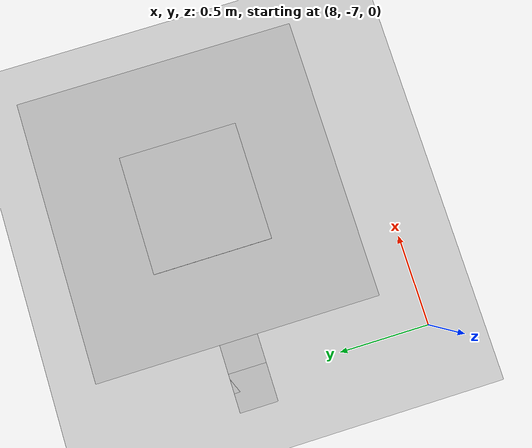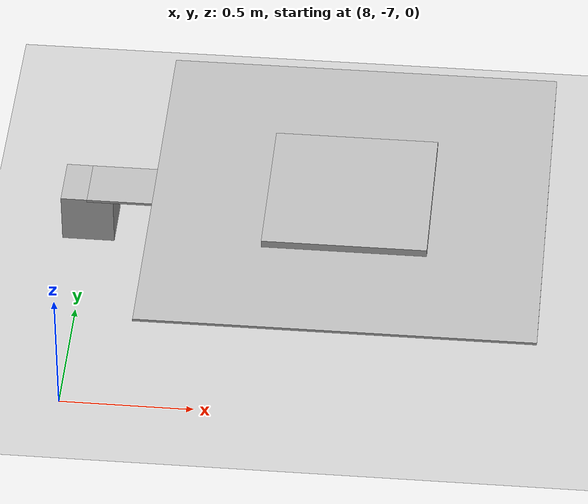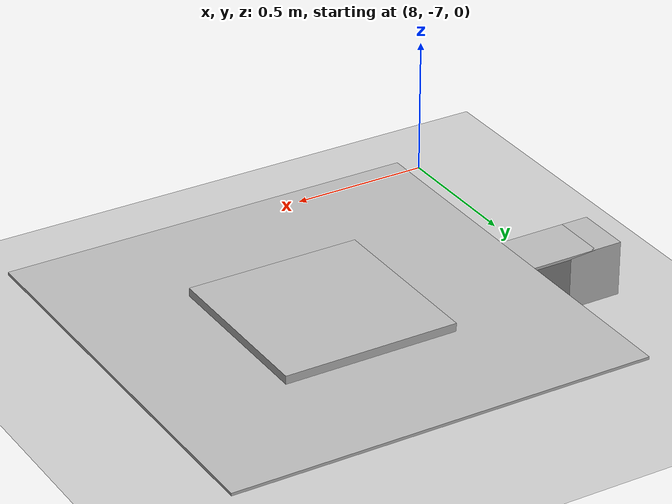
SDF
<sdf version="1.6">
 <world name="default">
  <model name="ground_plane">
   <static>1</static>
   <link name="link">
    <collision name="collision">
     <geometry><plane><normal>0 0 1</normal><size>100 100</size></plane></geometry>
     <surface>
      <contact><collide_bitmask>65535</collide_bitmask></contact>
      <friction><ode><mu>100</mu><mu2>50</mu2></ode></friction>
     </surface>
    </collision>
    <visual name="visual">
     <cast_shadows>0</cast_shadows>
     <geometry><plane><normal>0 0 1</normal><size>100 100</size></plane></geometry>
     <material>
      <script><uri>file://media/materials/scripts/gazebo.material</uri><name>Gazebo/Grey</name></script>
     </material>
    </visual>
   </link>
  </model>
  <model name="helipad_mobile">
   <pose>8 -6 0.1 0 0 0</pose>
   <joint name="helipad_fix0" type="fixed"><parent>world</parent><child>base</child></joint>
   <link name="base">
    <collision name="collision"><geometry><box><size>0.2 0.2 0.2</size></box></geometry></collision>
    <visual name="visual"><geometry><box><size>0.2 0.2 0.2</size></box></geometry></visual>
   </link>
   <joint name="helipad_joint" type="revolute">
    <pose>-0.5 0 0 0 0 0</pose>
    <parent>base</parent>
    <child>arm</child>
    <axis><xyz>0 0 1</xyz></axis>
    <physics><ode><velocity>-0.1</velocity><max_force>1000</max_force></ode></physics>
   </joint>
   <link name="arm">
    <pose>0.5 0 0.095 0 0 0</pose>
    <collision name="collision"><geometry><box><size>1 0.2 0.01</size></box></geometry></collision>
    <visual name="visual"><geometry><box><size>1 0.2 0.01</size></box></geometry></visual>
   </link>
   <joint name="helipad_fix1" type="fixed"><parent>arm</parent><child>helipad_link</child></joint>
   <joint name="helipad_fix5" type="fixed">
    <parent>helipad_link</parent>
    <child>helipad_moving_link</child>
   </joint>
   <link name="helipad_link">
    <pose>1 0 0.1 0 0 0</pose>
    <inertial><mass>10</mass></inertial>
    <collision name="wall_brand_collision">
     <geometry><box><size>1.5 1.5 0.01</size></box></geometry>
     <surface><contact><collide_bitmask>0x02</collide_bitmask></contact></surface>
    </collision>
    <visual name="helipad_visual"><geometry><box><size>1.5 1.5 0.01</size></box></geometry></visual>
   </link>
   <link name="helipad_moving_link">
    <pose>1 0 0.06 0 0 0</pose>
    <inertial><mass>10</mass></inertial>
    <collision name="wall_brand_collision">
     <geometry>
      <mesh><uri>file:///home/kan/catkin_ws/src/drone/drone_gazebo/models/auroc.dae</uri></mesh>
     </geometry>
     <surface><contact><collide_bitmask>0x02</collide_bitmask></contact></surface>
    </collision>
    <visual name="helipad_visual">
     <geometry>
      <mesh><uri>file:///home/kan/catkin_ws/src/drone/drone_gazebo/models/auroc.dae</uri></mesh>
     </geometry>
    </visual>
   </link>
  </model>
 </world>
</sdf>
